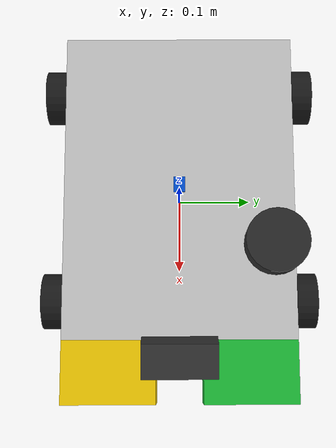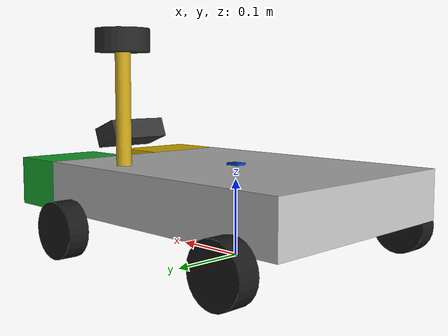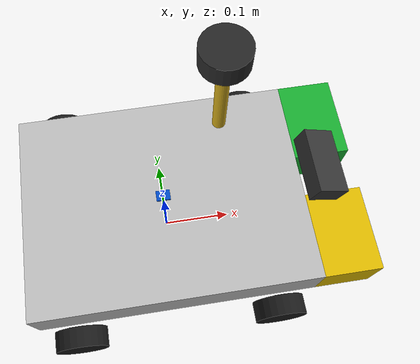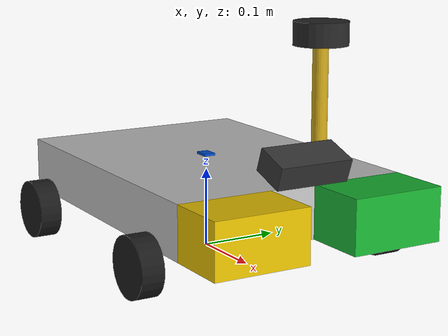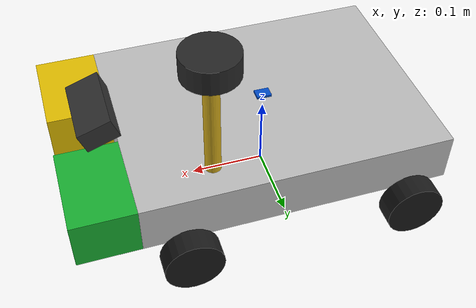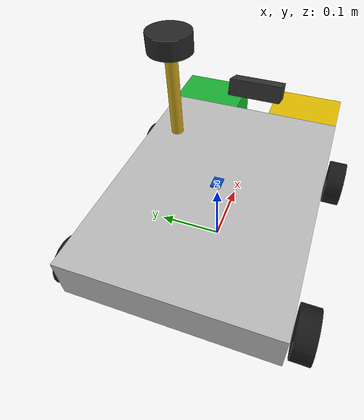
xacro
<?xml version="1.0"?>
<robot name="green_guardian" xmlns:xacro="http://www.ros.org/wiki/xacro">

  <xacro:include filename="$(find robot_description)/urdf/dimensions.xacro"/>
  <xacro:include filename="$(find robot_description)/urdf/materials.xacro"/>
  <xacro:include filename="$(find robot_description)/urdf/base.xacro"/>
  <xacro:include filename="$(find robot_description)/urdf/sensors.xacro"/>

</robot>

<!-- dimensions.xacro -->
<robot xmlns:xacro="http://www.ros.org/wiki/xacro">

  <xacro:property name="chassis_length"    value="0.400"/>   <!-- 40.0 cm -->
  <xacro:property name="chassis_width"     value="0.300"/>   <!-- 30.0 cm -->
  <xacro:property name="chassis_height"    value="0.066"/>   <!-- 6.6  cm = 4mm + 58mm + 4mm -->
  <xacro:property name="chassis_clearance" value="0.053"/>   <!-- 5.3  cm ground to chassis bottom -->

  <!-- Derived chassis Z values -->
  <xacro:property name="chassis_top_z"    value="${chassis_clearance + chassis_height}"/>
  <!-- = 0.119 m — top face of chassis box from ground -->
  <xacro:property name="base_link_z"      value="${chassis_clearance + chassis_height / 2.0}"/>
  <!-- = 0.086 m — chassis center from ground = base_link origin height -->

  <!-- ───────────────────────────────────────────────────────────────
       WHEELS
       ─────────────────────────────────────────────────────────────── -->
  <xacro:property name="wheel_radius"     value="0.0375"/>   <!-- 3.75 cm -->
  <xacro:property name="wheel_width"      value="0.0285"/>   <!-- 2.85 cm -->
  <xacro:property name="track_width"      value="0.341"/>    <!-- 34.1 cm center-to-center L/R -->
  <xacro:property name="wheelbase"        value="0.290"/>    <!-- 29.0 cm center-to-center F/R -->

  <!-- Derived wheel positions — relative to base_link origin -->
  <xacro:property name="wheel_x_front"   value="${wheelbase / 2.0}"/>
  <xacro:property name="wheel_x_rear"    value="${-wheelbase / 2.0}"/>
  <xacro:property name="wheel_y_left"    value="${track_width / 2.0}"/>
  <xacro:property name="wheel_y_right"   value="${-track_width / 2.0}"/>
  <xacro:property name="wheel_z"         value="${wheel_radius - base_link_z}"/>
  <!-- wheel_z is negative because wheel centers are below base_link -->

  <xacro:property name="lidar_radius"    value="0.035"/>     <!-- 3.5 cm -->
  <xacro:property name="lidar_height"    value="0.030"/>     <!-- 3.0 cm -->
  <xacro:property name="lidar_x"         value="0.099"/>     <!-- +9.9 cm forward from chassis center -->
  <xacro:property name="lidar_y"         value="0.106"/>     <!-- +10.6 cm left of chassis center -->

  <xacro:property name="lidar_standoff_h" value="0.145"/>   <!-- 14.5 cm standoff height -->
  <xacro:property name="lidar_standoff_r" value="0.010"/>   <!-- 1.0 cm standoff radius -->

  <!-- Derived LiDAR positions — relative to base_link origin -->
  <xacro:property name="lidar_standoff_z" value="${chassis_height / 2.0 + lidar_standoff_h / 2.0}"/>
  <!-- standoff center Z = chassis_top (rel to base_link) + half standoff = 0.033 + 0.0725 = 0.1055 m -->

  <xacro:property name="lidar_z"         value="${lidar_standoff_h / 2.0 + lidar_height / 2.0}"/>
  <!-- LiDAR center Z relative to standoff center = 0.0725 + 0.015 = 0.0875 m -->

  <xacro:property name="camera_width"    value="0.094"/>     <!-- 9.4 cm (Y direction) -->
  <xacro:property name="camera_height"   value="0.029"/>     <!-- 2.9 cm (Z direction) -->
  <xacro:property name="camera_depth"    value="0.045"/>     <!-- 4.5 cm (X direction) -->
  <xacro:property name="camera_y"        value="0.0"/>       <!-- centered on robot -->
  <xacro:property name="camera_pitch" value="${20.0 * pi / 180.0}"/>
  <!-- 0.349 rad — positive = nose down (looking at ground) -->

  <!-- Derived camera position — relative to base_link origin -->
  <xacro:property name="camera_x"        value="${chassis_length / 2.0 + camera_depth / 2.0}"/>
  <!-- front face + half depth = 0.200 + 0.0225 = 0.2225 m -->
  <xacro:property name="camera_z"        value="${0.150 - base_link_z}"/>
  <!-- 15.0 cm from ground - base_link_z = 0.150 - 0.086 = 0.064 m -->

  <xacro:property name="imu_length"      value="0.020"/>     <!-- 2.0 cm (X) -->
  <xacro:property name="imu_width"       value="0.015"/>     <!-- 1.5 cm (Y) -->
  <xacro:property name="imu_height"      value="0.003"/>     <!-- 0.3 cm (Z) -->

  <!-- Derived IMU position — relative to base_link origin -->
  <xacro:property name="imu_z"           value="${chassis_height / 2.0 + imu_height / 2.0}"/>
  <!-- sits on top of chassis: 0.033 + 0.0015 = 0.0345 m -->

  <xacro:property name="bin_height" value="${chassis_height}"/>     <!-- 15.0 cm -->
  <xacro:property name="bin_width"       value="0.120"/>     <!-- 12.0 cm (Y) -->
  <xacro:property name="bin_depth"       value="0.080"/>     <!-- 8.0  cm (X) -->
  <xacro:property name="bin_y_offset"    value="0.090"/>     <!-- 9.0  cm from centerline -->

  <!-- Derived bin positions — relative to base_link origin -->
  <xacro:property name="bin_x"           value="${chassis_length / 2.0 + bin_depth / 2.0}"/>
  <!-- front face + half depth = 0.200 + 0.040 = 0.240 m -->
  <xacro:property name="bin_z"           value="${chassis_height / 2.0 - bin_height / 2.0}"/>
  <!-- top of bin = chassis top → center = chassis_top_rel - bin_height/2 = 0.033 - 0.075 = -0.042 m -->

</robot>

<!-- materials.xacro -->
<robot xmlns:xacro="http://www.ros.org/wiki/xacro">

  <material name="chassis_grey">
    <color rgba="0.75 0.75 0.75 0.9"/>   <!-- translucent light grey — plexiglass look -->
  </material>

  <material name="wheel_black">
    <color rgba="0.1 0.1 0.1 1.0"/>
  </material>

  <material name="lidar_black">
    <color rgba="0.15 0.15 0.15 1.0"/>
  </material>

  <material name="lidar_standoff_gold">
    <color rgba="0.8 0.65 0.1 1.0"/>    <!-- brass/gold standoff color -->
  </material>

  <material name="camera_dark_grey">
    <color rgba="0.2 0.2 0.2 1.0"/>
  </material>

  <material name="imu_blue">
    <color rgba="0.0 0.3 0.8 1.0"/>     <!-- PCB blue -->
  </material>

  <material name="bin_green">
    <color rgba="0.1 0.7 0.2 1.0"/>     <!-- organic bin — green -->
  </material>

  <material name="bin_yellow">
    <color rgba="0.9 0.75 0.0 1.0"/>    <!-- non-organic bin — yellow -->
  </material>

</robot>

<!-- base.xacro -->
<robot xmlns:xacro="http://www.ros.org/wiki/xacro">

  <xacro:macro name="wheel" params="name x y">

    <link name="${name}">
      <visual>
        <geometry>
          <cylinder radius="${wheel_radius}" length="${wheel_width}"/>
        </geometry>
        <origin xyz="0 0 0" rpy="${pi/2} 0 0"/>
        <!-- rotate 90° around X so the cylinder axis aligns with Y (left-right) -->
        <material name="wheel_black"/>
      </visual>
      <collision>
        <geometry>
          <cylinder radius="${wheel_radius}" length="${wheel_width}"/>
        </geometry>
        <origin xyz="0 0 0" rpy="${pi/2} 0 0"/>
      </collision>
      <inertial>
        <!-- Approximate solid cylinder: m=0.2kg, r=0.0375, h=0.0285 -->
        <!-- Ixx = Iyy = m(3r²+h²)/12, Izz = mr²/2 -->
        <mass value="0.2"/>
        <inertia ixx="0.000148" ixy="0.0" ixz="0.0"
                 iyy="0.000148" iyz="0.0"
                 izz="0.000141"/>
      </inertial>
    </link>

    <joint name="${name}_joint" type="continuous">
      <parent link="base_link"/>
      <child  link="${name}"/>
      <origin xyz="${x} ${y} ${wheel_z}" rpy="0 0 0"/>
      <axis xyz="0 1 0"/>
      <!-- axis Y = wheel spins around left-right axis -->
    </joint>

  </xacro:macro>

  <link name="base_footprint"/>

  <joint name="base_footprint_joint" type="fixed">
    <parent link="base_footprint"/>
    <child  link="base_link"/>
    <origin xyz="0 0 ${base_link_z}" rpy="0 0 0"/>
    <!-- lifts base_link to chassis center height above ground -->
  </joint>

  <link name="base_link">
    <visual>
      <geometry>
        <box size="${chassis_length} ${chassis_width} ${chassis_height}"/>
      </geometry>
      <origin xyz="0 0 0" rpy="0 0 0"/>
      <material name="chassis_grey"/>
    </visual>
    <collision>
      <geometry>
        <box size="${chassis_length} ${chassis_width} ${chassis_height}"/>
      </geometry>
      <origin xyz="0 0 0" rpy="0 0 0"/>
    </collision>
    <inertial>
      <!-- Approximate box: m=3.0 kg (chassis + electronics + batteries) -->
      <!-- Ixx = m(w²+h²)/12, Iyy = m(l²+h²)/12, Izz = m(l²+w²)/12 -->
      <mass value="3.0"/>
      <inertia ixx="0.0226" ixy="0.0" ixz="0.0"
               iyy="0.0334" iyz="0.0"
               izz="0.0525"/>
    </inertial>
  </link>

  <!-- ───────────────────────────────────────────────────────────────
       WHEELS (×4)
       ─────────────────────────────────────────────────────────────── -->
  <xacro:wheel name="wheel_front_left"
               x="${wheel_x_front}" y="${wheel_y_left}"/>

  <xacro:wheel name="wheel_front_right"
               x="${wheel_x_front}" y="${wheel_y_right}"/>

  <xacro:wheel name="wheel_rear_left"
               x="${wheel_x_rear}"  y="${wheel_y_left}"/>

  <xacro:wheel name="wheel_rear_right"
               x="${wheel_x_rear}"  y="${wheel_y_right}"/>

  <link name="imu_link">
    <visual>
      <geometry>
        <box size="${imu_length} ${imu_width} ${imu_height}"/>
      </geometry>
      <origin xyz="0 0 0" rpy="0 0 0"/>
      <material name="imu_blue"/>
    </visual>
    <inertial>
      <mass value="0.01"/>
      <inertia ixx="0.0000001" ixy="0.0" ixz="0.0"
               iyy="0.0000001" iyz="0.0"
               izz="0.0000001"/>
    </inertial>
  </link>

  <joint name="imu_joint" type="fixed">
    <parent link="base_link"/>
    <child  link="imu_link"/>
    <origin xyz="0 0 ${imu_z}" rpy="0 0 0"/>
    <!-- centered on chassis, sitting on top face -->
  </joint>

</robot>

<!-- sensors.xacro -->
<robot xmlns:xacro="http://www.ros.org/wiki/xacro">

  <link name="lidar_standoff_link">
    <visual>
      <geometry>
        <cylinder radius="${lidar_standoff_r}" length="${lidar_standoff_h}"/>
      </geometry>
      <origin xyz="0 0 0" rpy="0 0 0"/>
      <material name="lidar_standoff_gold"/>
    </visual>
    <inertial>
      <mass value="0.05"/>
      <inertia ixx="0.0000001" ixy="0.0" ixz="0.0"
               iyy="0.0000001" iyz="0.0"
               izz="0.0000001"/>
    </inertial>
  </link>

  <joint name="lidar_standoff_joint" type="fixed">
    <parent link="base_link"/>
    <child  link="lidar_standoff_link"/>
    <origin xyz="${lidar_x} ${lidar_y} ${lidar_standoff_z}" rpy="0 0 0"/>
    <!-- standoff center Z = chassis_top (rel to base_link) + standoff_h/2 -->
    <!-- = 0.033 + 0.0725 = 0.1055 m above base_link -->
  </joint>

  <link name="laser_link">
    <visual>
      <geometry>
        <cylinder radius="${lidar_radius}" length="${lidar_height}"/>
      </geometry>
      <origin xyz="0 0 0" rpy="0 0 0"/>
      <material name="lidar_black"/>
    </visual>
    <collision>
      <geometry>
        <cylinder radius="${lidar_radius}" length="${lidar_height}"/>
      </geometry>
      <origin xyz="0 0 0" rpy="0 0 0"/>
    </collision>
    <inertial>
      <!-- RPLidar A1 weighs ~170g -->
      <mass value="0.17"/>
      <inertia ixx="0.0000600" ixy="0.0" ixz="0.0"
               iyy="0.0000600" iyz="0.0"
               izz="0.0001041"/>
    </inertial>
  </link>

  <joint name="laser_joint" type="fixed">
    <parent link="lidar_standoff_link"/>
    <child  link="laser_link"/>
    <origin xyz="0 0 ${lidar_z}" rpy="0 0 3.14159"/>
    <!-- LiDAR center Z relative to standoff center -->
    <!-- = standoff_h/2 + lidar_h/2 = 0.0725 + 0.015 = 0.0875 m -->
  </joint>

  <link name="camera_link">
    <visual>
      <geometry>
        <!-- size: depth(X) × width(Y) × height(Z) -->
        <box size="${camera_depth} ${camera_width} ${camera_height}"/>
      </geometry>
      <origin xyz="0 0 0" rpy="0 0 0"/>
      <material name="camera_dark_grey"/>
    </visual>
    <collision>
      <geometry>
        <box size="${camera_depth} ${camera_width} ${camera_height}"/>
      </geometry>
      <origin xyz="0 0 0" rpy="0 0 0"/>
    </collision>
    <inertial>
      <mass value="0.10"/>
      <inertia ixx="0.0000001" ixy="0.0" ixz="0.0"
               iyy="0.0000001" iyz="0.0"
               izz="0.0000001"/>
    </inertial>
  </link>

  <joint name="camera_joint" type="fixed">
    <parent link="base_link"/>
    <child  link="camera_link"/>
    <origin xyz="${camera_x} ${camera_y} ${camera_z}" rpy="0 ${camera_pitch} 0"/>
    <!-- camera_pitch = -20° → nose down, looking at ground ahead -->
  </joint>

  <link name="camera_optical_link"/>

  <joint name="camera_optical_joint" type="fixed">
    <parent link="camera_link"/>
    <child  link="camera_optical_link"/>
    <origin xyz="0 0 0" rpy="${-pi/2} 0 ${-pi/2}"/>
  </joint>

  <link name="bin_left_link">
    <visual>
      <geometry>
        <!-- size: depth(X) × width(Y) × height(Z) -->
        <box size="${bin_depth} ${bin_width} ${bin_height}"/>
      </geometry>
      <origin xyz="0 0 0" rpy="0 0 0"/>
      <material name="bin_green"/>
    </visual>
    <collision>
      <geometry>
        <box size="${bin_depth} ${bin_width} ${bin_height}"/>
      </geometry>
      <origin xyz="0 0 0" rpy="0 0 0"/>
    </collision>
    <inertial>
      <mass value="0.15"/>
      <inertia ixx="0.0000500" ixy="0.0" ixz="0.0"
               iyy="0.0000500" iyz="0.0"
               izz="0.0000500"/>
    </inertial>
  </link>

  <joint name="bin_left_joint" type="fixed">
    <parent link="base_link"/>
    <child  link="bin_left_link"/>
    <origin xyz="${bin_x} ${bin_y_offset} ${bin_z}" rpy="0 0 0"/>
    <!-- bin_x: front face + bin_depth/2                        -->
    <!-- bin_y_offset: +9.0cm (left side)                       -->
    <!-- bin_z: top aligned with chassis top → center offset down-->
  </joint>

  <link name="bin_right_link">
    <visual>
      <geometry>
        <box size="${bin_depth} ${bin_width} ${bin_height}"/>
      </geometry>
      <origin xyz="0 0 0" rpy="0 0 0"/>
      <material name="bin_yellow"/>
    </visual>
    <collision>
      <geometry>
        <box size="${bin_depth} ${bin_width} ${bin_height}"/>
      </geometry>
      <origin xyz="0 0 0" rpy="0 0 0"/>
    </collision>
    <inertial>
      <mass value="0.15"/>
      <inertia ixx="0.0000500" ixy="0.0" ixz="0.0"
               iyy="0.0000500" iyz="0.0"
               izz="0.0000500"/>
    </inertial>
  </link>

  <joint name="bin_right_joint" type="fixed">
    <parent link="base_link"/>
    <child  link="bin_right_link"/>
    <origin xyz="${bin_x} ${-bin_y_offset} ${bin_z}" rpy="0 0 0"/>
    <!-- -bin_y_offset → right side (negative Y) -->
  </joint>

</robot>
